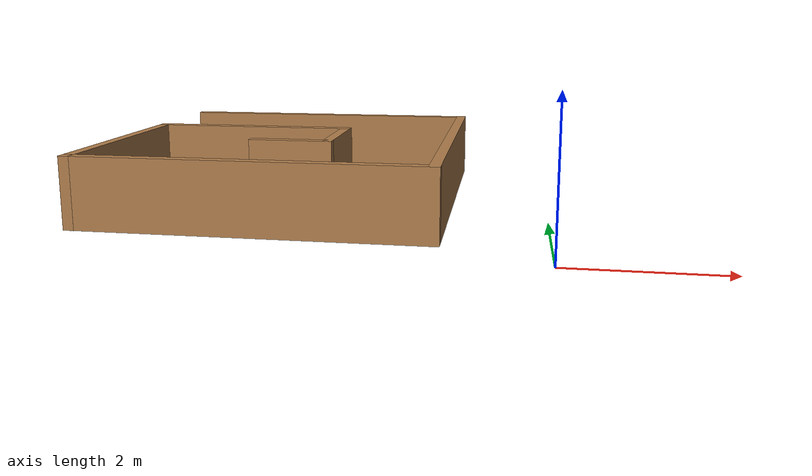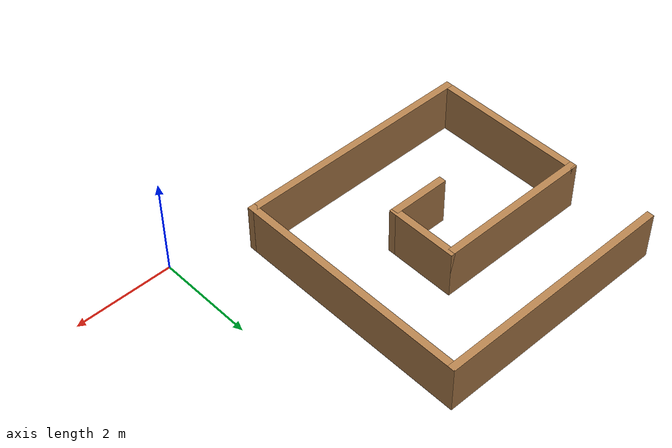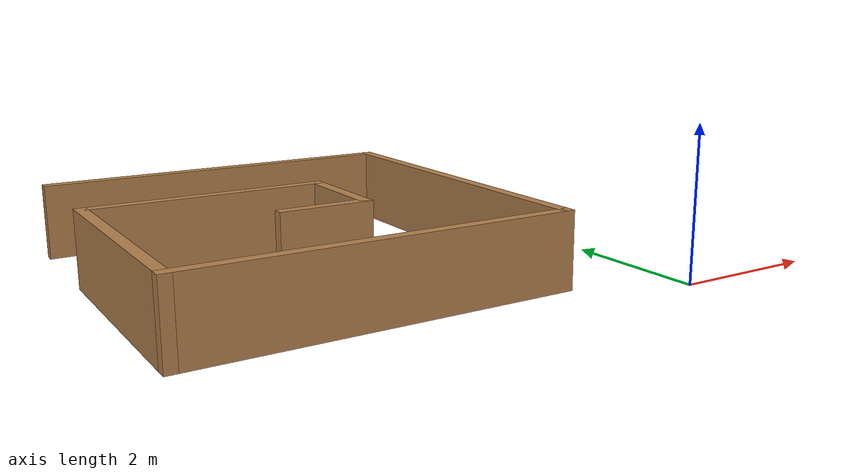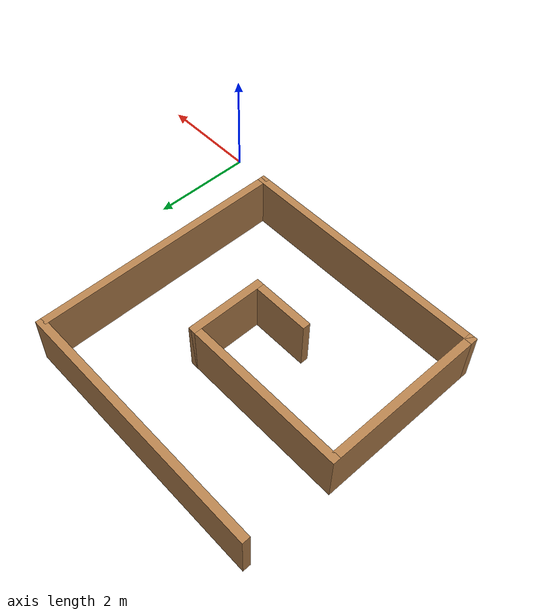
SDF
<?xml version='1.0'?>
<sdf version='1.7'>
  <model name='groupA1_custom.world'>
    <pose>-3.1825 2.8055 0 0 -0 0</pose>
    <link name='Wall_0'>
      <collision name='Wall_0_Collision'>
        <geometry>
          <box>
            <size>5 0.15 1</size>
          </box>
        </geometry>
        <pose>0 0 0.5 0 -0 0</pose>
      </collision>
      <visual name='Wall_0_Visual'>
        <pose>0 0 0.5 0 -0 0</pose>
        <geometry>
          <box>
            <size>5 0.15 1</size>
          </box>
        </geometry>
        <material>
          <script>
            <uri>file://media/materials/scripts/gazebo.material</uri>
            <name>Gazebo/Wood</name>
          </script>
          <ambient>1 1 1 1</ambient>
        </material>
        <meta>
          <layer>0</layer>
        </meta>
      </visual>
      <pose>-0.6825 2.7305 0 0 -0 0</pose>
    </link>
    <link name='Wall_1'>
      <collision name='Wall_1_Collision'>
        <geometry>
          <box>
            <size>5 0.15 1</size>
          </box>
        </geometry>
        <pose>0 0 0.5 0 -0 0</pose>
      </collision>
      <visual name='Wall_1_Visual'>
        <pose>0 0 0.5 0 -0 0</pose>
        <geometry>
          <box>
            <size>5 0.15 1</size>
          </box>
        </geometry>
        <material>
          <script>
            <uri>file://media/materials/scripts/gazebo.material</uri>
            <name>Gazebo/Wood</name>
          </script>
          <ambient>1 1 1 1</ambient>
        </material>
        <meta>
          <layer>0</layer>
        </meta>
      </visual>
      <pose>1.7425 0.3055 0 0 -0 -1.5708</pose>
    </link>
    <link name='Wall_2'>
      <collision name='Wall_2_Collision'>
        <geometry>
          <box>
            <size>5 0.15 1</size>
          </box>
        </geometry>
        <pose>0 0 0.5 0 -0 0</pose>
      </collision>
      <visual name='Wall_2_Visual'>
        <pose>0 0 0.5 0 -0 0</pose>
        <geometry>
          <box>
            <size>5 0.15 1</size>
          </box>
        </geometry>
        <material>
          <script>
            <uri>file://media/materials/scripts/gazebo.material</uri>
            <name>Gazebo/Wood</name>
          </script>
          <ambient>1 1 1 1</ambient>
        </material>
        <meta>
          <layer>0</layer>
        </meta>
      </visual>
      <pose>-0.6825 -2.1195 0 0 -0 3.14159</pose>
    </link>
    <link name='Wall_3'>
      <collision name='Wall_3_Collision'>
        <geometry>
          <box>
            <size>3.25 0.15 1</size>
          </box>
        </geometry>
        <pose>0 0 0.5 0 -0 0</pose>
      </collision>
      <visual name='Wall_3_Visual'>
        <pose>0 0 0.5 0 -0 0</pose>
        <geometry>
          <box>
            <size>3.25 0.15 1</size>
          </box>
        </geometry>
        <material>
          <script>
            <uri>file://media/materials/scripts/gazebo.material</uri>
            <name>Gazebo/Wood</name>
          </script>
          <ambient>1 1 1 1</ambient>
        </material>
        <meta>
          <layer>0</layer>
        </meta>
      </visual>
      <pose>-3.1075 -0.5695 0 0 -0 1.5708</pose>
    </link>
    <link name='Wall_4'>
      <collision name='Wall_4_Collision'>
        <geometry>
          <box>
            <size>3.25 0.15 1</size>
          </box>
        </geometry>
        <pose>0 0 0.5 0 -0 0</pose>
      </collision>
      <visual name='Wall_4_Visual'>
        <pose>0 0 0.5 0 -0 0</pose>
        <geometry>
          <box>
            <size>3.25 0.15 1</size>
          </box>
        </geometry>
        <material>
          <script>
            <uri>file://media/materials/scripts/gazebo.material</uri>
            <name>Gazebo/Wood</name>
          </script>
          <ambient>1 1 1 1</ambient>
        </material>
        <meta>
          <layer>0</layer>
        </meta>
      </visual>
      <pose>-1.5575 0.9805 0 0 -0 0</pose>
    </link>
    <link name='Wall_5'>
      <collision name='Wall_5_Collision'>
        <geometry>
          <box>
            <size>1.5 0.15 1</size>
          </box>
        </geometry>
        <pose>0 0 0.5 0 -0 0</pose>
      </collision>
      <visual name='Wall_5_Visual'>
        <pose>0 0 0.5 0 -0 0</pose>
        <geometry>
          <box>
            <size>1.5 0.15 1</size>
          </box>
        </geometry>
        <material>
          <script>
            <uri>file://media/materials/scripts/gazebo.material</uri>
            <name>Gazebo/Wood</name>
          </script>
          <ambient>1 1 1 1</ambient>
        </material>
        <meta>
          <layer>0</layer>
        </meta>
      </visual>
      <pose>-0.0075 0.3055 0 0 -0 -1.5708</pose>
    </link>
    <link name='Wall_6'>
      <collision name='Wall_6_Collision'>
        <geometry>
          <box>
            <size>1.25 0.15 1</size>
          </box>
        </geometry>
        <pose>0 0 0.5 0 -0 0</pose>
      </collision>
      <visual name='Wall_6_Visual'>
        <pose>0 0 0.5 0 -0 0</pose>
        <geometry>
          <box>
            <size>1.25 0.15 1</size>
          </box>
        </geometry>
        <material>
          <script>
            <uri>file://media/materials/scripts/gazebo.material</uri>
            <name>Gazebo/Wood</name>
          </script>
          <ambient>1 1 1 1</ambient>
        </material>
        <meta>
          <layer>0</layer>
        </meta>
      </visual>
      <pose>-0.5575 -0.3695 0 0 -0 3.14159</pose>
    </link>
    <static>1</static>
  </model>
</sdf>
